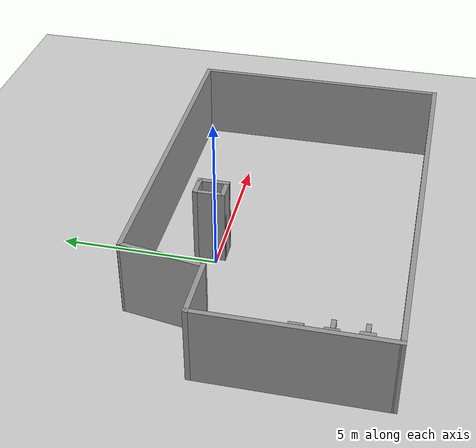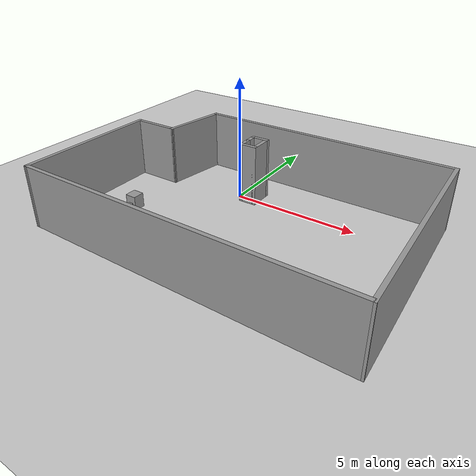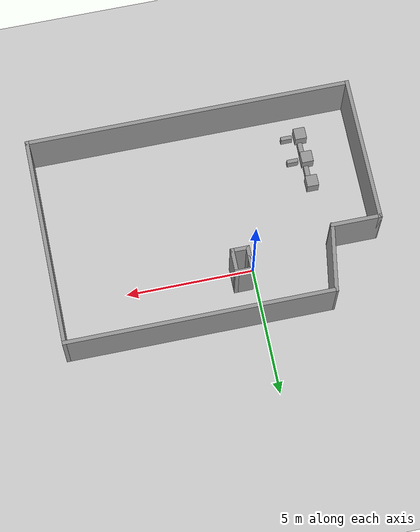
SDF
<sdf version="1.7">
 <world name="lab211_with_boxes_t3_1">
  <light name="sun" type="directional">
   <pose>0 0 10 0 -0 0</pose>
   <diffuse>0.8 0.8 0.8 1</diffuse>
   <specular>0.2 0.2 0.2 1</specular>
   <attenuation>
    <range>1000</range>
    <constant>0.9</constant>
    <linear>0.01</linear>
    <quadratic>0.001</quadratic>
   </attenuation>
   <direction>-0.5 0.1 -0.9</direction>
   <spot><inner_angle>0</inner_angle><outer_angle>0</outer_angle><falloff>0</falloff></spot>
  </light>
  <model name="ground_plane">
   <static>1</static>
   <link name="link">
    <collision name="collision">
     <geometry><plane><normal>0 0 1</normal><size>100 100</size></plane></geometry>
     <surface>
      <contact><collide_bitmask>65535</collide_bitmask></contact>
      <friction><ode><mu>100</mu><mu2>50</mu2></ode></friction>
     </surface>
    </collision>
    <visual name="visual">
     <cast_shadows>0</cast_shadows>
     <geometry><plane><normal>0 0 1</normal><size>100 100</size></plane></geometry>
     <material>
      <script><uri>file://media/materials/scripts/gazebo.material</uri><name>Gazebo/Grey</name></script>
      <ambient>0.9 0.9 0.9 1</ambient>
      <diffuse>0.9 0.9 0.9 1</diffuse>
      <specular>0.9 0.9 0.9 1</specular>
      <emissive>0.4 0.4 0.4 1</emissive>
     </material>
    </visual>
   </link>
  </model>
  <gravity>0 0 -9.8</gravity>
  <magnetic_field>6e-06 2.3e-05 -4.2e-05</magnetic_field>
  <atmosphere type="adiabatic"/>
  <physics type="ode">
   <max_step_size>0.001</max_step_size>
   <real_time_factor>1</real_time_factor>
   <real_time_update_rate>1000</real_time_update_rate>
  </physics>
  <scene><ambient>0.4 0.4 0.4 1</ambient><background>0.7 0.7 0.7 1</background><shadows>1</shadows></scene>
  <audio><device>default</device></audio>
  <spherical_coordinates>
   <surface_model>EARTH_WGS84</surface_model>
   <latitude_deg>0</latitude_deg>
   <longitude_deg>0</longitude_deg>
   <elevation>0</elevation>
   <heading_deg>0</heading_deg>
  </spherical_coordinates>
  <model name="lab211_1">
   <pose>1.34834 -1.97187 0 0 -0 0</pose>
   <link name="Wall_12">
    <collision name="Wall_12_Collision">
     <geometry><box><size>8.25 0.15 2.5</size></box></geometry>
     <pose>0 0 1.25 0 -0 0</pose>
    </collision>
    <visual name="Wall_12_Visual">
     <pose>0 0 1.25 0 -0 0</pose>
     <geometry><box><size>8.25 0.15 2.5</size></box></geometry>
     <material>
      <script><uri>file://media/materials/scripts/gazebo.material</uri><name>Gazebo/Grey</name></script>
      <ambient>0.9 0.9 0.9 1</ambient>
      <diffuse>0.9 0.9 0.9 1</diffuse>
      <specular>0.9 0.9 0.9 1</specular>
      <emissive>0.4 0.4 0.4 1</emissive>
      <ambient>0.9 0.9 0.9 1</ambient>
      <diffuse>0.9 0.9 0.9 1</diffuse>
      <specular>0.9 0.9 0.9 1</specular>
      <emissive>0.4 0.4 0.4 1</emissive>
     </material>
     <meta><layer>0</layer></meta>
    </visual>
    <pose>6.31146 3.1e-05 0 0 -0 1.5708</pose>
   </link>
   <link name="Wall_13">
    <collision name="Wall_13_Collision">
     <geometry><box><size>10.5 0.15 2.5</size></box></geometry>
     <pose>0 0 1.25 0 -0 0</pose>
    </collision>
    <visual name="Wall_13_Visual">
     <pose>0 0 1.25 0 -0 0</pose>
     <geometry><box><size>10.5 0.15 2.5</size></box></geometry>
     <material>
      <script><uri>file://media/materials/scripts/gazebo.material</uri><name>Gazebo/Grey</name></script>
      <ambient>0.9 0.9 0.9 1</ambient>
      <diffuse>0.9 0.9 0.9 1</diffuse>
      <specular>0.9 0.9 0.9 1</specular>
      <emissive>0.4 0.4 0.4 1</emissive>
     </material>
     <meta><layer>0</layer></meta>
    </visual>
    <pose>1.13646 4.05003 0 0 -0 3.14159</pose>
   </link>
   <link name="Wall_16">
    <collision name="Wall_16_Collision">
     <geometry><box><size>5.75 0.15 2.5</size></box></geometry>
     <pose>0 0 1.25 0 -0 0</pose>
    </collision>
    <visual name="Wall_16_Visual">
     <pose>0 0 1.25 0 -0 0</pose>
     <geometry><box><size>5.75 0.15 2.5</size></box></geometry>
     <material>
      <script><uri>file://media/materials/scripts/gazebo.material</uri><name>Gazebo/Grey</name></script>
      <ambient>0.9 0.9 0.9 1</ambient>
      <diffuse>0.9 0.9 0.9 1</diffuse>
      <specular>0.9 0.9 0.9 1</specular>
      <emissive>0.4 0.4 0.4 1</emissive>
     </material>
     <meta><layer>0</layer></meta>
    </visual>
    <pose>-6.31147 -1.26138 0 0 -0 -1.5708</pose>
   </link>
   <link name="Wall_18">
    <collision name="Wall_18_Collision">
     <geometry><box><size>12.7729 0.15 2.5</size></box></geometry>
     <pose>0 0 1.25 0 -0 0</pose>
    </collision>
    <visual name="Wall_18_Visual">
     <pose>0 0 1.25 0 -0 0</pose>
     <geometry><box><size>12.7729 0.15 2.5</size></box></geometry>
     <material>
      <script><uri>file://media/materials/scripts/gazebo.material</uri><name>Gazebo/Grey</name></script>
      <ambient>0.9 0.9 0.9 1</ambient>
      <diffuse>0.9 0.9 0.9 1</diffuse>
      <specular>0.9 0.9 0.9 1</specular>
      <emissive>0.4 0.4 0.4 1</emissive>
     </material>
     <meta><layer>0</layer></meta>
    </visual>
    <pose>-0 -4.05567 0 0 -0 0.000904</pose>
   </link>
   <link name="Wall_20">
    <collision name="Wall_20_Collision">
     <geometry><box><size>2 0.15 2.5</size></box></geometry>
     <pose>0 0 1.25 0 -0 0</pose>
    </collision>
    <visual name="Wall_20_Visual">
     <pose>0 0 1.25 0 -0 0</pose>
     <geometry><box><size>2 0.15 2.5</size></box></geometry>
     <material>
      <script><uri>file://media/materials/scripts/gazebo.material</uri><name>Gazebo/Grey</name></script>
      <ambient>0.9 0.9 0.9 1</ambient>
      <diffuse>0.9 0.9 0.9 1</diffuse>
      <specular>0.9 0.9 0.9 1</specular>
      <emissive>0.4 0.4 0.4 1</emissive>
     </material>
     <meta><layer>0</layer></meta>
    </visual>
    <pose>-5.38647 1.53862 0 0 -0 0</pose>
   </link>
   <link name="Wall_21">
    <collision name="Wall_21_Collision">
     <geometry><box><size>2.69677 0.15 2.5</size></box></geometry>
     <pose>0 0 1.25 0 -0 0</pose>
    </collision>
    <visual name="Wall_21_Visual">
     <pose>0 0 1.25 0 -0 0</pose>
     <geometry><box><size>2.69677 0.15 2.5</size></box></geometry>
     <material>
      <script><uri>file://media/materials/scripts/gazebo.material</uri><name>Gazebo/Grey</name></script>
      <ambient>0.9 0.9 0.9 1</ambient>
      <diffuse>0.9 0.9 0.9 1</diffuse>
      <specular>0.9 0.9 0.9 1</specular>
      <emissive>0.4 0.4 0.4 1</emissive>
     </material>
     <meta><layer>0</layer></meta>
    </visual>
    <pose>-4.25 2.79433 0 0 -0 1.40396</pose>
   </link>
   <static>1</static>
  </model>
  <model name="lab211_piller">
   <pose>0.447124 0.232964 0 0 -0 0</pose>
   <link name="Wall_28">
    <collision name="Wall_28_Collision">
     <geometry><box><size>0.5532 0.15 2.5</size></box></geometry>
     <pose>0 0 1.25 0 -0 0</pose>
    </collision>
    <visual name="Wall_28_Visual">
     <pose>0 0 1.25 0 -0 0</pose>
     <geometry><box><size>0.5532 0.15 2.5</size></box></geometry>
     <material>
      <script><uri>file://media/materials/scripts/gazebo.material</uri><name>Gazebo/Grey</name></script>
      <ambient>0.9 0.9 0.9 1</ambient>
      <diffuse>0.9 0.9 0.9 1</diffuse>
      <specular>0.9 0.9 0.9 1</specular>
      <emissive>0.4 0.4 0.4 1</emissive>
     </material>
     <meta><layer>0</layer></meta>
    </visual>
    <pose>-0.227876 -0.2234 0 0 -0 -1.5708</pose>
   </link>
   <link name="Wall_29">
    <collision name="Wall_29_Collision">
     <geometry><box><size>0.75 0.15 2.5</size></box></geometry>
     <pose>0 0 1.25 0 -0 0</pose>
    </collision>
    <visual name="Wall_29_Visual">
     <pose>0 0 1.25 0 -0 0</pose>
     <geometry><box><size>0.75 0.15 2.5</size></box></geometry>
     <material>
      <script><uri>file://media/materials/scripts/gazebo.material</uri><name>Gazebo/Grey</name></script>
      <ambient>0.9 0.9 0.9 1</ambient>
      <diffuse>0.9 0.9 0.9 1</diffuse>
      <specular>0.9 0.9 0.9 1</specular>
      <emissive>0.4 0.4 0.4 1</emissive>
     </material>
     <meta><layer>0</layer></meta>
    </visual>
    <pose>0.072124 -0.425 0 0 -0 0</pose>
   </link>
   <link name="Wall_30">
    <collision name="Wall_30_Collision">
     <geometry><box><size>1 0.15 2.5</size></box></geometry>
     <pose>0 0 1.25 0 -0 0</pose>
    </collision>
    <visual name="Wall_30_Visual">
     <pose>0 0 1.25 0 -0 0</pose>
     <geometry><box><size>1 0.15 2.5</size></box></geometry>
     <material>
      <script><uri>file://media/materials/scripts/gazebo.material</uri><name>Gazebo/Grey</name></script>
      <ambient>0.9 0.9 0.9 1</ambient>
      <diffuse>0.9 0.9 0.9 1</diffuse>
      <specular>0.9 0.9 0.9 1</specular>
      <emissive>0.4 0.4 0.4 1</emissive>
     </material>
     <meta><layer>0</layer></meta>
    </visual>
    <pose>0.372124 -0 0 0 -0 1.5708</pose>
   </link>
   <link name="Wall_31">
    <collision name="Wall_31_Collision">
     <geometry><box><size>0.75 0.15 2.5</size></box></geometry>
     <pose>0 0 1.25 0 -0 0</pose>
    </collision>
    <visual name="Wall_31_Visual">
     <pose>0 0 1.25 0 -0 0</pose>
     <geometry><box><size>0.75 0.15 2.5</size></box></geometry>
     <material>
      <script><uri>file://media/materials/scripts/gazebo.material</uri><name>Gazebo/Grey</name></script>
      <ambient>0.9 0.9 0.9 1</ambient>
      <diffuse>0.9 0.9 0.9 1</diffuse>
      <specular>0.9 0.9 0.9 1</specular>
      <emissive>0.4 0.4 0.4 1</emissive>
     </material>
     <meta><layer>0</layer></meta>
    </visual>
    <pose>0.072124 0.425 0 0 -0 3.14159</pose>
   </link>
   <link name="Wall_32">
    <collision name="Wall_32_Collision">
     <geometry><box><size>0.5968 0.15 2.5</size></box></geometry>
     <pose>0 0 1.25 0 -0 0</pose>
    </collision>
    <visual name="Wall_32_Visual">
     <pose>0 0 1.25 0 -0 0</pose>
     <geometry><box><size>0.5968 0.15 2.5</size></box></geometry>
     <material>
      <script><uri>file://media/materials/scripts/gazebo.material</uri><name>Gazebo/Grey</name></script>
      <ambient>0.9 0.9 0.9 1</ambient>
      <diffuse>0.9 0.9 0.9 1</diffuse>
      <specular>0.9 0.9 0.9 1</specular>
      <emissive>0.4 0.4 0.4 1</emissive>
     </material>
     <meta><layer>0</layer></meta>
    </visual>
    <pose>-0.227876 0.2016 0 0 -0 -1.5708</pose>
   </link>
   <static>1</static>
  </model>
  <model name="unit_box">
   <pose>-3.00841 -3.00777 0.294122 0 -0 4e-06</pose>
   <link name="link">
    <inertial>
     <mass>1</mass>
     <inertia>
      <ixx>0.166667</ixx>
      <ixy>0</ixy>
      <ixz>0</ixz>
      <iyy>0.166667</iyy>
      <iyz>0</iyz>
      <izz>0.166667</izz>
     </inertia>
    </inertial>
    <collision name="collision"><geometry><box><size>0.460991 0.46303 0.588244</size></box></geometry></collision>
    <visual name="visual">
     <geometry><box><size>0.460991 0.46303 0.588244</size></box></geometry>
     <material>
      <script><name>Gazebo/Grey</name><uri>file://media/materials/scripts/gazebo.material</uri></script>
     </material>
    </visual>
   </link>
  </model>
  <model name="unit_box_clone">
   <pose>-3.02205 -4.03785 0.294122 0 0 -0.002878</pose>
   <link name="link">
    <inertial>
     <mass>1</mass>
     <inertia>
      <ixx>0.166667</ixx>
      <ixy>0</ixy>
      <ixz>0</ixz>
      <iyy>0.166667</iyy>
      <iyz>0</iyz>
      <izz>0.166667</izz>
     </inertia>
    </inertial>
    <collision name="collision"><geometry><box><size>0.460991 0.46303 0.588244</size></box></geometry></collision>
    <visual name="visual">
     <geometry><box><size>0.460991 0.46303 0.588244</size></box></geometry>
     <material>
      <script><name>Gazebo/Grey</name><uri>file://media/materials/scripts/gazebo.material</uri></script>
     </material>
    </visual>
   </link>
  </model>
  <model name="unit_box_clone_0">
   <pose>-2.97237 -5.0476 0.294122 0 -0 4e-06</pose>
   <link name="link">
    <inertial>
     <mass>1</mass>
     <inertia>
      <ixx>0.166667</ixx>
      <ixy>0</ixy>
      <ixz>0</ixz>
      <iyy>0.166667</iyy>
      <iyz>0</iyz>
      <izz>0.166667</izz>
     </inertia>
    </inertial>
    <collision name="collision"><geometry><box><size>0.460991 0.46303 0.588244</size></box></geometry></collision>
    <visual name="visual">
     <geometry><box><size>0.460991 0.46303 0.588244</size></box></geometry>
     <material>
      <script><name>Gazebo/Grey</name><uri>file://media/materials/scripts/gazebo.material</uri></script>
     </material>
    </visual>
   </link>
  </model>
  <model name="unit_box_0">
   <pose>-2.93406 -3.52071 0.170136 0 0 -0.003932</pose>
   <link name="link">
    <inertial>
     <mass>1</mass>
     <inertia>
      <ixx>0.166667</ixx>
      <ixy>0</ixy>
      <ixz>0</ixz>
      <iyy>0.166667</iyy>
      <iyz>0</iyz>
      <izz>0.166667</izz>
     </inertia>
    </inertial>
    <collision name="collision">
     <geometry><box><size>0.189383 0.439631 0.340272</size></box></geometry>
    </collision>
    <visual name="visual">
     <geometry><box><size>0.189383 0.439631 0.340272</size></box></geometry>
     <material>
      <script><name>Gazebo/Grey</name><uri>file://media/materials/scripts/gazebo.material</uri></script>
     </material>
    </visual>
   </link>
  </model>
  <model name="unit_box_0_clone">
   <pose>-2.90218 -4.53009 0.170136 0 -0 -0.003947</pose>
   <link name="link">
    <inertial>
     <mass>1</mass>
     <inertia>
      <ixx>0.166667</ixx>
      <ixy>0</ixy>
      <ixz>0</ixz>
      <iyy>0.166667</iyy>
      <iyz>0</iyz>
      <izz>0.166667</izz>
     </inertia>
    </inertial>
    <collision name="collision">
     <geometry><box><size>0.189383 0.439631 0.340272</size></box></geometry>
    </collision>
    <visual name="visual">
     <geometry><box><size>0.189383 0.439631 0.340272</size></box></geometry>
     <material>
      <script><name>Gazebo/Grey</name><uri>file://media/materials/scripts/gazebo.material</uri></script>
     </material>
    </visual>
   </link>
  </model>
  <model name="unit_box_1">
   <pose>-2.42094 -5.03016 0.197734 -0 3e-06 4e-06</pose>
   <link name="link">
    <inertial>
     <mass>1</mass>
     <inertia>
      <ixx>0.166667</ixx>
      <ixy>0</ixy>
      <ixz>0</ixz>
      <iyy>0.166667</iyy>
      <iyz>0</iyz>
      <izz>0.166667</izz>
     </inertia>
    </inertial>
    <collision name="collision">
     <geometry><box><size>0.440317 0.149217 0.395467</size></box></geometry>
    </collision>
    <visual name="visual">
     <geometry><box><size>0.440317 0.149217 0.395467</size></box></geometry>
     <material>
      <script><name>Gazebo/Grey</name><uri>file://media/materials/scripts/gazebo.material</uri></script>
     </material>
    </visual>
   </link>
  </model>
  <model name="unit_box_1_clone">
   <pose>-2.45814 -4.03203 0.197732 -2e-06 8e-06 2e-05</pose>
   <link name="link">
    <inertial>
     <mass>1</mass>
     <inertia>
      <ixx>0.166667</ixx>
      <ixy>0</ixy>
      <ixz>0</ixz>
      <iyy>0.166667</iyy>
      <iyz>0</iyz>
      <izz>0.166667</izz>
     </inertia>
    </inertial>
    <collision name="collision">
     <geometry><box><size>0.440317 0.149217 0.395467</size></box></geometry>
    </collision>
    <visual name="visual">
     <geometry><box><size>0.440317 0.149217 0.395467</size></box></geometry>
     <material>
      <script><name>Gazebo/Grey</name><uri>file://media/materials/scripts/gazebo.material</uri></script>
     </material>
    </visual>
   </link>
  </model>
 </world>
</sdf>
